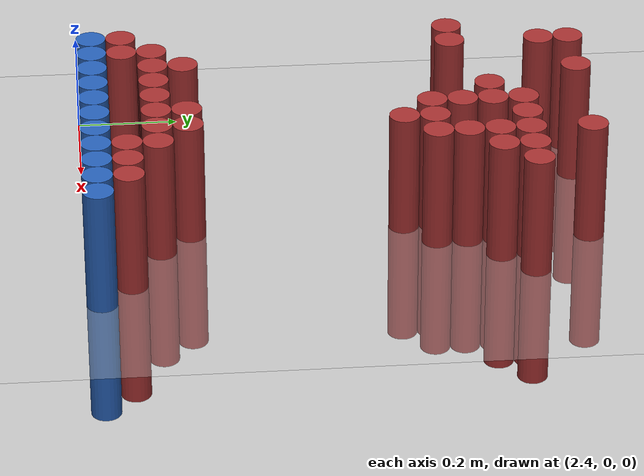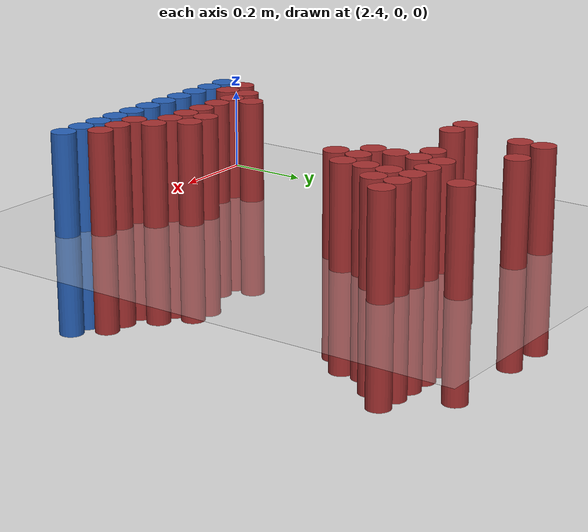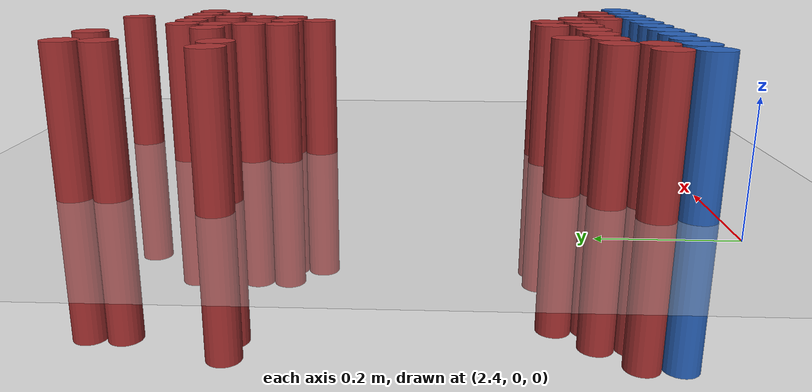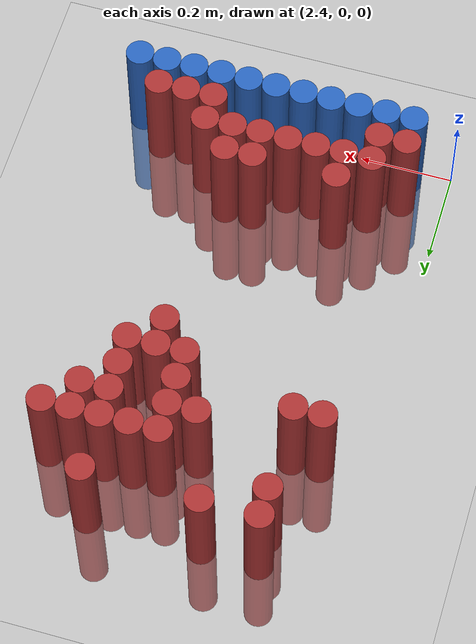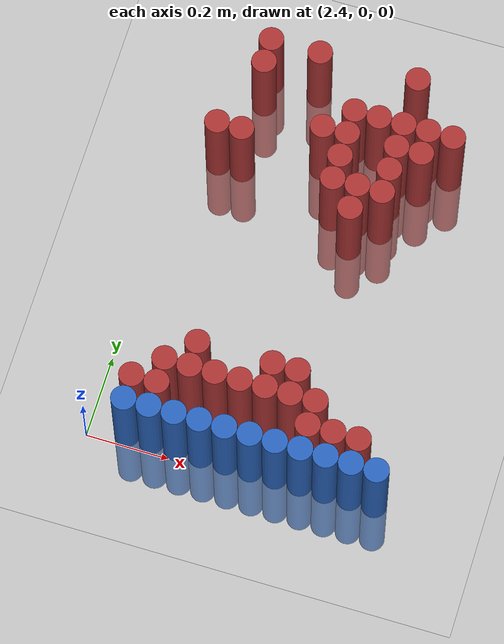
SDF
<sdf version="1.6">
 <world name="default">
  <model name="ground_plane">
   <static>1</static>
   <link name="link">
    <collision name="collision">
     <geometry><plane><normal>0 0 1</normal><size>100 100</size></plane></geometry>
     <surface><friction><ode><mu>100</mu><mu2>50</mu2></ode></friction></surface>
    </collision>
    <visual name="visual">
     <cast_shadows>0</cast_shadows>
     <geometry><plane><normal>0 0 1</normal><size>100 100</size></plane></geometry>
     <material>
      <script><uri>file://media/materials/scripts/gazebo.material</uri><name>Gazebo/Grey</name></script>
     </material>
    </visual>
   </link>
  </model>
  <model name="unit_cylinder_204">
   <static>1</static>
   <pose>2.550000 0.990000 0.000000 0.000000 0.000000 0.000000</pose>
   <link name="link">
    <inertial>
     <mass>1</mass>
     <inertia><ixx>0.145833</ixx><ixy>0</ixy><ixz>0</ixz><iyy>0.145833</iyy><iyz>0</iyz><izz>0.125</izz></inertia>
    </inertial>
    <collision name="collision">
     <geometry><cylinder><radius>0.030000</radius><length>0.5</length></cylinder></geometry>
    </collision>
    <visual name="visual">
     <geometry><cylinder><radius>0.030000</radius><length>0.5</length></cylinder></geometry>
     <material>
      <ambient>0.648000 0.192000 0.192000 1</ambient>
      <diffuse>0.648000 0.192000 0.192000 1</diffuse>
     </material>
     <material>
      <script><name>Gazebo/Grey</name><uri>file://media/materials/scripts/gazebo.material</uri></script>
     </material>
    </visual>
   </link>
  </model>
  <model name="unit_cylinder_205">
   <static>1</static>
   <pose>2.670000 0.990000 0.000000 0.000000 0.000000 0.000000</pose>
   <link name="link">
    <inertial>
     <mass>1</mass>
     <inertia><ixx>0.145833</ixx><ixy>0</ixy><ixz>0</ixz><iyy>0.145833</iyy><iyz>0</iyz><izz>0.125</izz></inertia>
    </inertial>
    <collision name="collision">
     <geometry><cylinder><radius>0.030000</radius><length>0.5</length></cylinder></geometry>
    </collision>
    <visual name="visual">
     <geometry><cylinder><radius>0.030000</radius><length>0.5</length></cylinder></geometry>
     <material>
      <ambient>0.648000 0.192000 0.192000 1</ambient>
      <diffuse>0.648000 0.192000 0.192000 1</diffuse>
     </material>
     <material>
      <script><name>Gazebo/Grey</name><uri>file://media/materials/scripts/gazebo.material</uri></script>
     </material>
    </visual>
   </link>
  </model>
  <model name="unit_cylinder_206">
   <static>1</static>
   <pose>2.910000 0.990000 0.000000 0.000000 0.000000 0.000000</pose>
   <link name="link">
    <inertial>
     <mass>1</mass>
     <inertia><ixx>0.145833</ixx><ixy>0</ixy><ixz>0</ixz><iyy>0.145833</iyy><iyz>0</iyz><izz>0.125</izz></inertia>
    </inertial>
    <collision name="collision">
     <geometry><cylinder><radius>0.030000</radius><length>0.5</length></cylinder></geometry>
    </collision>
    <visual name="visual">
     <geometry><cylinder><radius>0.030000</radius><length>0.5</length></cylinder></geometry>
     <material>
      <ambient>0.648000 0.192000 0.192000 1</ambient>
      <diffuse>0.648000 0.192000 0.192000 1</diffuse>
     </material>
     <material>
      <script><name>Gazebo/Grey</name><uri>file://media/materials/scripts/gazebo.material</uri></script>
     </material>
    </visual>
   </link>
  </model>
  <model name="unit_cylinder_213">
   <static>1</static>
   <pose>2.550000 0.930000 0.000000 0.000000 0.000000 0.000000</pose>
   <link name="link">
    <inertial>
     <mass>1</mass>
     <inertia><ixx>0.145833</ixx><ixy>0</ixy><ixz>0</ixz><iyy>0.145833</iyy><iyz>0</iyz><izz>0.125</izz></inertia>
    </inertial>
    <collision name="collision">
     <geometry><cylinder><radius>0.030000</radius><length>0.5</length></cylinder></geometry>
    </collision>
    <visual name="visual">
     <geometry><cylinder><radius>0.030000</radius><length>0.5</length></cylinder></geometry>
     <material>
      <ambient>0.648000 0.192000 0.192000 1</ambient>
      <diffuse>0.648000 0.192000 0.192000 1</diffuse>
     </material>
     <material>
      <script><name>Gazebo/Grey</name><uri>file://media/materials/scripts/gazebo.material</uri></script>
     </material>
    </visual>
   </link>
  </model>
  <model name="unit_cylinder_221">
   <static>1</static>
   <pose>2.790000 0.870000 0.000000 0.000000 0.000000 0.000000</pose>
   <link name="link">
    <inertial>
     <mass>1</mass>
     <inertia><ixx>0.145833</ixx><ixy>0</ixy><ixz>0</ixz><iyy>0.145833</iyy><iyz>0</iyz><izz>0.125</izz></inertia>
    </inertial>
    <collision name="collision">
     <geometry><cylinder><radius>0.030000</radius><length>0.5</length></cylinder></geometry>
    </collision>
    <visual name="visual">
     <geometry><cylinder><radius>0.030000</radius><length>0.5</length></cylinder></geometry>
     <material>
      <ambient>0.648000 0.192000 0.192000 1</ambient>
      <diffuse>0.648000 0.192000 0.192000 1</diffuse>
     </material>
     <material>
      <script><name>Gazebo/Grey</name><uri>file://media/materials/scripts/gazebo.material</uri></script>
     </material>
    </visual>
   </link>
  </model>
  <model name="unit_cylinder_222">
   <static>1</static>
   <pose>2.850000 0.870000 0.000000 0.000000 0.000000 0.000000</pose>
   <link name="link">
    <inertial>
     <mass>1</mass>
     <inertia><ixx>0.145833</ixx><ixy>0</ixy><ixz>0</ixz><iyy>0.145833</iyy><iyz>0</iyz><izz>0.125</izz></inertia>
    </inertial>
    <collision name="collision">
     <geometry><cylinder><radius>0.030000</radius><length>0.5</length></cylinder></geometry>
    </collision>
    <visual name="visual">
     <geometry><cylinder><radius>0.030000</radius><length>0.5</length></cylinder></geometry>
     <material>
      <ambient>0.648000 0.192000 0.192000 1</ambient>
      <diffuse>0.648000 0.192000 0.192000 1</diffuse>
     </material>
     <material>
      <script><name>Gazebo/Grey</name><uri>file://media/materials/scripts/gazebo.material</uri></script>
     </material>
    </visual>
   </link>
  </model>
  <model name="unit_cylinder_223">
   <static>1</static>
   <pose>2.910000 0.870000 0.000000 0.000000 0.000000 0.000000</pose>
   <link name="link">
    <inertial>
     <mass>1</mass>
     <inertia><ixx>0.145833</ixx><ixy>0</ixy><ixz>0</ixz><iyy>0.145833</iyy><iyz>0</iyz><izz>0.125</izz></inertia>
    </inertial>
    <collision name="collision">
     <geometry><cylinder><radius>0.030000</radius><length>0.5</length></cylinder></geometry>
    </collision>
    <visual name="visual">
     <geometry><cylinder><radius>0.030000</radius><length>0.5</length></cylinder></geometry>
     <material>
      <ambient>0.648000 0.192000 0.192000 1</ambient>
      <diffuse>0.648000 0.192000 0.192000 1</diffuse>
     </material>
     <material>
      <script><name>Gazebo/Grey</name><uri>file://media/materials/scripts/gazebo.material</uri></script>
     </material>
    </visual>
   </link>
  </model>
  <model name="unit_cylinder_224">
   <static>1</static>
   <pose>2.970000 0.870000 0.000000 0.000000 0.000000 0.000000</pose>
   <link name="link">
    <inertial>
     <mass>1</mass>
     <inertia><ixx>0.145833</ixx><ixy>0</ixy><ixz>0</ixz><iyy>0.145833</iyy><iyz>0</iyz><izz>0.125</izz></inertia>
    </inertial>
    <collision name="collision">
     <geometry><cylinder><radius>0.030000</radius><length>0.5</length></cylinder></geometry>
    </collision>
    <visual name="visual">
     <geometry><cylinder><radius>0.030000</radius><length>0.5</length></cylinder></geometry>
     <material>
      <ambient>0.648000 0.192000 0.192000 1</ambient>
      <diffuse>0.648000 0.192000 0.192000 1</diffuse>
     </material>
     <material>
      <script><name>Gazebo/Grey</name><uri>file://media/materials/scripts/gazebo.material</uri></script>
     </material>
    </visual>
   </link>
  </model>
  <model name="unit_cylinder_225">
   <static>1</static>
   <pose>3.030000 0.870000 0.000000 0.000000 0.000000 0.000000</pose>
   <link name="link">
    <inertial>
     <mass>1</mass>
     <inertia><ixx>0.145833</ixx><ixy>0</ixy><ixz>0</ixz><iyy>0.145833</iyy><iyz>0</iyz><izz>0.125</izz></inertia>
    </inertial>
    <collision name="collision">
     <geometry><cylinder><radius>0.030000</radius><length>0.5</length></cylinder></geometry>
    </collision>
    <visual name="visual">
     <geometry><cylinder><radius>0.030000</radius><length>0.5</length></cylinder></geometry>
     <material>
      <ambient>0.648000 0.192000 0.192000 1</ambient>
      <diffuse>0.648000 0.192000 0.192000 1</diffuse>
     </material>
     <material>
      <script><name>Gazebo/Grey</name><uri>file://media/materials/scripts/gazebo.material</uri></script>
     </material>
    </visual>
   </link>
  </model>
  <model name="unit_cylinder_231">
   <static>1</static>
   <pose>2.730000 0.810000 0.000000 0.000000 0.000000 0.000000</pose>
   <link name="link">
    <inertial>
     <mass>1</mass>
     <inertia><ixx>0.145833</ixx><ixy>0</ixy><ixz>0</ixz><iyy>0.145833</iyy><iyz>0</iyz><izz>0.125</izz></inertia>
    </inertial>
    <collision name="collision">
     <geometry><cylinder><radius>0.030000</radius><length>0.5</length></cylinder></geometry>
    </collision>
    <visual name="visual">
     <geometry><cylinder><radius>0.030000</radius><length>0.5</length></cylinder></geometry>
     <material>
      <ambient>0.648000 0.192000 0.192000 1</ambient>
      <diffuse>0.648000 0.192000 0.192000 1</diffuse>
     </material>
     <material>
      <script><name>Gazebo/Grey</name><uri>file://media/materials/scripts/gazebo.material</uri></script>
     </material>
    </visual>
   </link>
  </model>
  <model name="unit_cylinder_232">
   <static>1</static>
   <pose>2.790000 0.810000 0.000000 0.000000 0.000000 0.000000</pose>
   <link name="link">
    <inertial>
     <mass>1</mass>
     <inertia><ixx>0.145833</ixx><ixy>0</ixy><ixz>0</ixz><iyy>0.145833</iyy><iyz>0</iyz><izz>0.125</izz></inertia>
    </inertial>
    <collision name="collision">
     <geometry><cylinder><radius>0.030000</radius><length>0.5</length></cylinder></geometry>
    </collision>
    <visual name="visual">
     <geometry><cylinder><radius>0.030000</radius><length>0.5</length></cylinder></geometry>
     <material>
      <ambient>0.648000 0.192000 0.192000 1</ambient>
      <diffuse>0.648000 0.192000 0.192000 1</diffuse>
     </material>
     <material>
      <script><name>Gazebo/Grey</name><uri>file://media/materials/scripts/gazebo.material</uri></script>
     </material>
    </visual>
   </link>
  </model>
  <model name="unit_cylinder_233">
   <static>1</static>
   <pose>2.910000 0.810000 0.000000 0.000000 0.000000 0.000000</pose>
   <link name="link">
    <inertial>
     <mass>1</mass>
     <inertia><ixx>0.145833</ixx><ixy>0</ixy><ixz>0</ixz><iyy>0.145833</iyy><iyz>0</iyz><izz>0.125</izz></inertia>
    </inertial>
    <collision name="collision">
     <geometry><cylinder><radius>0.030000</radius><length>0.5</length></cylinder></geometry>
    </collision>
    <visual name="visual">
     <geometry><cylinder><radius>0.030000</radius><length>0.5</length></cylinder></geometry>
     <material>
      <ambient>0.648000 0.192000 0.192000 1</ambient>
      <diffuse>0.648000 0.192000 0.192000 1</diffuse>
     </material>
     <material>
      <script><name>Gazebo/Grey</name><uri>file://media/materials/scripts/gazebo.material</uri></script>
     </material>
    </visual>
   </link>
  </model>
  <model name="unit_cylinder_234">
   <static>1</static>
   <pose>2.970000 0.810000 0.000000 0.000000 0.000000 0.000000</pose>
   <link name="link">
    <inertial>
     <mass>1</mass>
     <inertia><ixx>0.145833</ixx><ixy>0</ixy><ixz>0</ixz><iyy>0.145833</iyy><iyz>0</iyz><izz>0.125</izz></inertia>
    </inertial>
    <collision name="collision">
     <geometry><cylinder><radius>0.030000</radius><length>0.5</length></cylinder></geometry>
    </collision>
    <visual name="visual">
     <geometry><cylinder><radius>0.030000</radius><length>0.5</length></cylinder></geometry>
     <material>
      <ambient>0.648000 0.192000 0.192000 1</ambient>
      <diffuse>0.648000 0.192000 0.192000 1</diffuse>
     </material>
     <material>
      <script><name>Gazebo/Grey</name><uri>file://media/materials/scripts/gazebo.material</uri></script>
     </material>
    </visual>
   </link>
  </model>
  <model name="unit_cylinder_239">
   <static>1</static>
   <pose>2.490000 0.750000 0.000000 0.000000 0.000000 0.000000</pose>
   <link name="link">
    <inertial>
     <mass>1</mass>
     <inertia><ixx>0.145833</ixx><ixy>0</ixy><ixz>0</ixz><iyy>0.145833</iyy><iyz>0</iyz><izz>0.125</izz></inertia>
    </inertial>
    <collision name="collision">
     <geometry><cylinder><radius>0.030000</radius><length>0.5</length></cylinder></geometry>
    </collision>
    <visual name="visual">
     <geometry><cylinder><radius>0.030000</radius><length>0.5</length></cylinder></geometry>
     <material>
      <ambient>0.648000 0.192000 0.192000 1</ambient>
      <diffuse>0.648000 0.192000 0.192000 1</diffuse>
     </material>
     <material>
      <script><name>Gazebo/Grey</name><uri>file://media/materials/scripts/gazebo.material</uri></script>
     </material>
    </visual>
   </link>
  </model>
  <model name="unit_cylinder_240">
   <static>1</static>
   <pose>2.550000 0.750000 0.000000 0.000000 0.000000 0.000000</pose>
   <link name="link">
    <inertial>
     <mass>1</mass>
     <inertia><ixx>0.145833</ixx><ixy>0</ixy><ixz>0</ixz><iyy>0.145833</iyy><iyz>0</iyz><izz>0.125</izz></inertia>
    </inertial>
    <collision name="collision">
     <geometry><cylinder><radius>0.030000</radius><length>0.5</length></cylinder></geometry>
    </collision>
    <visual name="visual">
     <geometry><cylinder><radius>0.030000</radius><length>0.5</length></cylinder></geometry>
     <material>
      <ambient>0.648000 0.192000 0.192000 1</ambient>
      <diffuse>0.648000 0.192000 0.192000 1</diffuse>
     </material>
     <material>
      <script><name>Gazebo/Grey</name><uri>file://media/materials/scripts/gazebo.material</uri></script>
     </material>
    </visual>
   </link>
  </model>
  <model name="unit_cylinder_241">
   <static>1</static>
   <pose>2.790000 0.750000 0.000000 0.000000 0.000000 0.000000</pose>
   <link name="link">
    <inertial>
     <mass>1</mass>
     <inertia><ixx>0.145833</ixx><ixy>0</ixy><ixz>0</ixz><iyy>0.145833</iyy><iyz>0</iyz><izz>0.125</izz></inertia>
    </inertial>
    <collision name="collision">
     <geometry><cylinder><radius>0.030000</radius><length>0.5</length></cylinder></geometry>
    </collision>
    <visual name="visual">
     <geometry><cylinder><radius>0.030000</radius><length>0.5</length></cylinder></geometry>
     <material>
      <ambient>0.648000 0.192000 0.192000 1</ambient>
      <diffuse>0.648000 0.192000 0.192000 1</diffuse>
     </material>
     <material>
      <script><name>Gazebo/Grey</name><uri>file://media/materials/scripts/gazebo.material</uri></script>
     </material>
    </visual>
   </link>
  </model>
  <model name="unit_cylinder_242">
   <static>1</static>
   <pose>2.910000 0.750000 0.000000 0.000000 0.000000 0.000000</pose>
   <link name="link">
    <inertial>
     <mass>1</mass>
     <inertia><ixx>0.145833</ixx><ixy>0</ixy><ixz>0</ixz><iyy>0.145833</iyy><iyz>0</iyz><izz>0.125</izz></inertia>
    </inertial>
    <collision name="collision">
     <geometry><cylinder><radius>0.030000</radius><length>0.5</length></cylinder></geometry>
    </collision>
    <visual name="visual">
     <geometry><cylinder><radius>0.030000</radius><length>0.5</length></cylinder></geometry>
     <material>
      <ambient>0.648000 0.192000 0.192000 1</ambient>
      <diffuse>0.648000 0.192000 0.192000 1</diffuse>
     </material>
     <material>
      <script><name>Gazebo/Grey</name><uri>file://media/materials/scripts/gazebo.material</uri></script>
     </material>
    </visual>
   </link>
  </model>
  <model name="unit_cylinder_246">
   <static>1</static>
   <pose>2.790000 0.690000 0.000000 0.000000 0.000000 0.000000</pose>
   <link name="link">
    <inertial>
     <mass>1</mass>
     <inertia><ixx>0.145833</ixx><ixy>0</ixy><ixz>0</ixz><iyy>0.145833</iyy><iyz>0</iyz><izz>0.125</izz></inertia>
    </inertial>
    <collision name="collision">
     <geometry><cylinder><radius>0.030000</radius><length>0.5</length></cylinder></geometry>
    </collision>
    <visual name="visual">
     <geometry><cylinder><radius>0.030000</radius><length>0.5</length></cylinder></geometry>
     <material>
      <ambient>0.648000 0.192000 0.192000 1</ambient>
      <diffuse>0.648000 0.192000 0.192000 1</diffuse>
     </material>
     <material>
      <script><name>Gazebo/Grey</name><uri>file://media/materials/scripts/gazebo.material</uri></script>
     </material>
    </visual>
   </link>
  </model>
  <model name="unit_cylinder_247">
   <static>1</static>
   <pose>2.850000 0.690000 0.000000 0.000000 0.000000 0.000000</pose>
   <link name="link">
    <inertial>
     <mass>1</mass>
     <inertia><ixx>0.145833</ixx><ixy>0</ixy><ixz>0</ixz><iyy>0.145833</iyy><iyz>0</iyz><izz>0.125</izz></inertia>
    </inertial>
    <collision name="collision">
     <geometry><cylinder><radius>0.030000</radius><length>0.5</length></cylinder></geometry>
    </collision>
    <visual name="visual">
     <geometry><cylinder><radius>0.030000</radius><length>0.5</length></cylinder></geometry>
     <material>
      <ambient>0.648000 0.192000 0.192000 1</ambient>
      <diffuse>0.648000 0.192000 0.192000 1</diffuse>
     </material>
     <material>
      <script><name>Gazebo/Grey</name><uri>file://media/materials/scripts/gazebo.material</uri></script>
     </material>
    </visual>
   </link>
  </model>
  <model name="unit_cylinder_248">
   <static>1</static>
   <pose>2.910000 0.690000 0.000000 0.000000 0.000000 0.000000</pose>
   <link name="link">
    <inertial>
     <mass>1</mass>
     <inertia><ixx>0.145833</ixx><ixy>0</ixy><ixz>0</ixz><iyy>0.145833</iyy><iyz>0</iyz><izz>0.125</izz></inertia>
    </inertial>
    <collision name="collision">
     <geometry><cylinder><radius>0.030000</radius><length>0.5</length></cylinder></geometry>
    </collision>
    <visual name="visual">
     <geometry><cylinder><radius>0.030000</radius><length>0.5</length></cylinder></geometry>
     <material>
      <ambient>0.648000 0.192000 0.192000 1</ambient>
      <diffuse>0.648000 0.192000 0.192000 1</diffuse>
     </material>
     <material>
      <script><name>Gazebo/Grey</name><uri>file://media/materials/scripts/gazebo.material</uri></script>
     </material>
    </visual>
   </link>
  </model>
  <model name="unit_cylinder_254">
   <static>1</static>
   <pose>2.850000 0.630000 0.000000 0.000000 0.000000 0.000000</pose>
   <link name="link">
    <inertial>
     <mass>1</mass>
     <inertia><ixx>0.145833</ixx><ixy>0</ixy><ixz>0</ixz><iyy>0.145833</iyy><iyz>0</iyz><izz>0.125</izz></inertia>
    </inertial>
    <collision name="collision">
     <geometry><cylinder><radius>0.030000</radius><length>0.5</length></cylinder></geometry>
    </collision>
    <visual name="visual">
     <geometry><cylinder><radius>0.030000</radius><length>0.5</length></cylinder></geometry>
     <material>
      <ambient>0.648000 0.192000 0.192000 1</ambient>
      <diffuse>0.648000 0.192000 0.192000 1</diffuse>
     </material>
     <material>
      <script><name>Gazebo/Grey</name><uri>file://media/materials/scripts/gazebo.material</uri></script>
     </material>
    </visual>
   </link>
  </model>
  <model name="unit_cylinder_272">
   <static>1</static>
   <pose>2.610000 0.210000 0.000000 0.000000 0.000000 0.000000</pose>
   <link name="link">
    <inertial>
     <mass>1</mass>
     <inertia><ixx>0.145833</ixx><ixy>0</ixy><ixz>0</ixz><iyy>0.145833</iyy><iyz>0</iyz><izz>0.125</izz></inertia>
    </inertial>
    <collision name="collision">
     <geometry><cylinder><radius>0.030000</radius><length>0.5</length></cylinder></geometry>
    </collision>
    <visual name="visual">
     <geometry><cylinder><radius>0.030000</radius><length>0.5</length></cylinder></geometry>
     <material>
      <ambient>0.648000 0.192000 0.192000 1</ambient>
      <diffuse>0.648000 0.192000 0.192000 1</diffuse>
     </material>
     <material>
      <script><name>Gazebo/Grey</name><uri>file://media/materials/scripts/gazebo.material</uri></script>
     </material>
    </visual>
   </link>
  </model>
  <model name="unit_cylinder_273">
   <static>1</static>
   <pose>2.790000 0.210000 0.000000 0.000000 0.000000 0.000000</pose>
   <link name="link">
    <inertial>
     <mass>1</mass>
     <inertia><ixx>0.145833</ixx><ixy>0</ixy><ixz>0</ixz><iyy>0.145833</iyy><iyz>0</iyz><izz>0.125</izz></inertia>
    </inertial>
    <collision name="collision">
     <geometry><cylinder><radius>0.030000</radius><length>0.5</length></cylinder></geometry>
    </collision>
    <visual name="visual">
     <geometry><cylinder><radius>0.030000</radius><length>0.5</length></cylinder></geometry>
     <material>
      <ambient>0.648000 0.192000 0.192000 1</ambient>
      <diffuse>0.648000 0.192000 0.192000 1</diffuse>
     </material>
     <material>
      <script><name>Gazebo/Grey</name><uri>file://media/materials/scripts/gazebo.material</uri></script>
     </material>
    </visual>
   </link>
  </model>
  <model name="unit_cylinder_274">
   <static>1</static>
   <pose>2.850000 0.210000 0.000000 0.000000 0.000000 0.000000</pose>
   <link name="link">
    <inertial>
     <mass>1</mass>
     <inertia><ixx>0.145833</ixx><ixy>0</ixy><ixz>0</ixz><iyy>0.145833</iyy><iyz>0</iyz><izz>0.125</izz></inertia>
    </inertial>
    <collision name="collision">
     <geometry><cylinder><radius>0.030000</radius><length>0.5</length></cylinder></geometry>
    </collision>
    <visual name="visual">
     <geometry><cylinder><radius>0.030000</radius><length>0.5</length></cylinder></geometry>
     <material>
      <ambient>0.648000 0.192000 0.192000 1</ambient>
      <diffuse>0.648000 0.192000 0.192000 1</diffuse>
     </material>
     <material>
      <script><name>Gazebo/Grey</name><uri>file://media/materials/scripts/gazebo.material</uri></script>
     </material>
    </visual>
   </link>
  </model>
  <model name="unit_cylinder_276">
   <static>1</static>
   <pose>2.550000 0.150000 0.000000 0.000000 0.000000 0.000000</pose>
   <link name="link">
    <inertial>
     <mass>1</mass>
     <inertia><ixx>0.145833</ixx><ixy>0</ixy><ixz>0</ixz><iyy>0.145833</iyy><iyz>0</iyz><izz>0.125</izz></inertia>
    </inertial>
    <collision name="collision">
     <geometry><cylinder><radius>0.030000</radius><length>0.5</length></cylinder></geometry>
    </collision>
    <visual name="visual">
     <geometry><cylinder><radius>0.030000</radius><length>0.5</length></cylinder></geometry>
     <material>
      <ambient>0.648000 0.192000 0.192000 1</ambient>
      <diffuse>0.648000 0.192000 0.192000 1</diffuse>
     </material>
     <material>
      <script><name>Gazebo/Grey</name><uri>file://media/materials/scripts/gazebo.material</uri></script>
     </material>
    </visual>
   </link>
  </model>
  <model name="unit_cylinder_277">
   <static>1</static>
   <pose>2.610000 0.150000 0.000000 0.000000 0.000000 0.000000</pose>
   <link name="link">
    <inertial>
     <mass>1</mass>
     <inertia><ixx>0.145833</ixx><ixy>0</ixy><ixz>0</ixz><iyy>0.145833</iyy><iyz>0</iyz><izz>0.125</izz></inertia>
    </inertial>
    <collision name="collision">
     <geometry><cylinder><radius>0.030000</radius><length>0.5</length></cylinder></geometry>
    </collision>
    <visual name="visual">
     <geometry><cylinder><radius>0.030000</radius><length>0.5</length></cylinder></geometry>
     <material>
      <ambient>0.648000 0.192000 0.192000 1</ambient>
      <diffuse>0.648000 0.192000 0.192000 1</diffuse>
     </material>
     <material>
      <script><name>Gazebo/Grey</name><uri>file://media/materials/scripts/gazebo.material</uri></script>
     </material>
    </visual>
   </link>
  </model>
  <model name="unit_cylinder_278">
   <static>1</static>
   <pose>2.670000 0.150000 0.000000 0.000000 0.000000 0.000000</pose>
   <link name="link">
    <inertial>
     <mass>1</mass>
     <inertia><ixx>0.145833</ixx><ixy>0</ixy><ixz>0</ixz><iyy>0.145833</iyy><iyz>0</iyz><izz>0.125</izz></inertia>
    </inertial>
    <collision name="collision">
     <geometry><cylinder><radius>0.030000</radius><length>0.5</length></cylinder></geometry>
    </collision>
    <visual name="visual">
     <geometry><cylinder><radius>0.030000</radius><length>0.5</length></cylinder></geometry>
     <material>
      <ambient>0.648000 0.192000 0.192000 1</ambient>
      <diffuse>0.648000 0.192000 0.192000 1</diffuse>
     </material>
     <material>
      <script><name>Gazebo/Grey</name><uri>file://media/materials/scripts/gazebo.material</uri></script>
     </material>
    </visual>
   </link>
  </model>
  <model name="unit_cylinder_279">
   <static>1</static>
   <pose>2.730000 0.150000 0.000000 0.000000 0.000000 0.000000</pose>
   <link name="link">
    <inertial>
     <mass>1</mass>
     <inertia><ixx>0.145833</ixx><ixy>0</ixy><ixz>0</ixz><iyy>0.145833</iyy><iyz>0</iyz><izz>0.125</izz></inertia>
    </inertial>
    <collision name="collision">
     <geometry><cylinder><radius>0.030000</radius><length>0.5</length></cylinder></geometry>
    </collision>
    <visual name="visual">
     <geometry><cylinder><radius>0.030000</radius><length>0.5</length></cylinder></geometry>
     <material>
      <ambient>0.648000 0.192000 0.192000 1</ambient>
      <diffuse>0.648000 0.192000 0.192000 1</diffuse>
     </material>
     <material>
      <script><name>Gazebo/Grey</name><uri>file://media/materials/scripts/gazebo.material</uri></script>
     </material>
    </visual>
   </link>
  </model>
  <model name="unit_cylinder_280">
   <static>1</static>
   <pose>2.790000 0.150000 0.000000 0.000000 0.000000 0.000000</pose>
   <link name="link">
    <inertial>
     <mass>1</mass>
     <inertia><ixx>0.145833</ixx><ixy>0</ixy><ixz>0</ixz><iyy>0.145833</iyy><iyz>0</iyz><izz>0.125</izz></inertia>
    </inertial>
    <collision name="collision">
     <geometry><cylinder><radius>0.030000</radius><length>0.5</length></cylinder></geometry>
    </collision>
    <visual name="visual">
     <geometry><cylinder><radius>0.030000</radius><length>0.5</length></cylinder></geometry>
     <material>
      <ambient>0.648000 0.192000 0.192000 1</ambient>
      <diffuse>0.648000 0.192000 0.192000 1</diffuse>
     </material>
     <material>
      <script><name>Gazebo/Grey</name><uri>file://media/materials/scripts/gazebo.material</uri></script>
     </material>
    </visual>
   </link>
  </model>
  <model name="unit_cylinder_281">
   <static>1</static>
   <pose>2.850000 0.150000 0.000000 0.000000 0.000000 0.000000</pose>
   <link name="link">
    <inertial>
     <mass>1</mass>
     <inertia><ixx>0.145833</ixx><ixy>0</ixy><ixz>0</ixz><iyy>0.145833</iyy><iyz>0</iyz><izz>0.125</izz></inertia>
    </inertial>
    <collision name="collision">
     <geometry><cylinder><radius>0.030000</radius><length>0.5</length></cylinder></geometry>
    </collision>
    <visual name="visual">
     <geometry><cylinder><radius>0.030000</radius><length>0.5</length></cylinder></geometry>
     <material>
      <ambient>0.648000 0.192000 0.192000 1</ambient>
      <diffuse>0.648000 0.192000 0.192000 1</diffuse>
     </material>
     <material>
      <script><name>Gazebo/Grey</name><uri>file://media/materials/scripts/gazebo.material</uri></script>
     </material>
    </visual>
   </link>
  </model>
  <model name="unit_cylinder_282">
   <static>1</static>
   <pose>2.910000 0.150000 0.000000 0.000000 0.000000 0.000000</pose>
   <link name="link">
    <inertial>
     <mass>1</mass>
     <inertia><ixx>0.145833</ixx><ixy>0</ixy><ixz>0</ixz><iyy>0.145833</iyy><iyz>0</iyz><izz>0.125</izz></inertia>
    </inertial>
    <collision name="collision">
     <geometry><cylinder><radius>0.030000</radius><length>0.5</length></cylinder></geometry>
    </collision>
    <visual name="visual">
     <geometry><cylinder><radius>0.030000</radius><length>0.5</length></cylinder></geometry>
     <material>
      <ambient>0.648000 0.192000 0.192000 1</ambient>
      <diffuse>0.648000 0.192000 0.192000 1</diffuse>
     </material>
     <material>
      <script><name>Gazebo/Grey</name><uri>file://media/materials/scripts/gazebo.material</uri></script>
     </material>
    </visual>
   </link>
  </model>
  <model name="unit_cylinder_286">
   <static>1</static>
   <pose>2.490000 0.090000 0.000000 0.000000 0.000000 0.000000</pose>
   <link name="link">
    <inertial>
     <mass>1</mass>
     <inertia><ixx>0.145833</ixx><ixy>0</ixy><ixz>0</ixz><iyy>0.145833</iyy><iyz>0</iyz><izz>0.125</izz></inertia>
    </inertial>
    <collision name="collision">
     <geometry><cylinder><radius>0.030000</radius><length>0.5</length></cylinder></geometry>
    </collision>
    <visual name="visual">
     <geometry><cylinder><radius>0.030000</radius><length>0.5</length></cylinder></geometry>
     <material>
      <ambient>0.648000 0.192000 0.192000 1</ambient>
      <diffuse>0.648000 0.192000 0.192000 1</diffuse>
     </material>
     <material>
      <script><name>Gazebo/Grey</name><uri>file://media/materials/scripts/gazebo.material</uri></script>
     </material>
    </visual>
   </link>
  </model>
  <model name="unit_cylinder_287">
   <static>1</static>
   <pose>2.550000 0.090000 0.000000 0.000000 0.000000 0.000000</pose>
   <link name="link">
    <inertial>
     <mass>1</mass>
     <inertia><ixx>0.145833</ixx><ixy>0</ixy><ixz>0</ixz><iyy>0.145833</iyy><iyz>0</iyz><izz>0.125</izz></inertia>
    </inertial>
    <collision name="collision">
     <geometry><cylinder><radius>0.030000</radius><length>0.5</length></cylinder></geometry>
    </collision>
    <visual name="visual">
     <geometry><cylinder><radius>0.030000</radius><length>0.5</length></cylinder></geometry>
     <material>
      <ambient>0.648000 0.192000 0.192000 1</ambient>
      <diffuse>0.648000 0.192000 0.192000 1</diffuse>
     </material>
     <material>
      <script><name>Gazebo/Grey</name><uri>file://media/materials/scripts/gazebo.material</uri></script>
     </material>
    </visual>
   </link>
  </model>
  <model name="unit_cylinder_288">
   <static>1</static>
   <pose>2.910000 0.090000 0.000000 0.000000 0.000000 0.000000</pose>
   <link name="link">
    <inertial>
     <mass>1</mass>
     <inertia><ixx>0.145833</ixx><ixy>0</ixy><ixz>0</ixz><iyy>0.145833</iyy><iyz>0</iyz><izz>0.125</izz></inertia>
    </inertial>
    <collision name="collision">
     <geometry><cylinder><radius>0.030000</radius><length>0.5</length></cylinder></geometry>
    </collision>
    <visual name="visual">
     <geometry><cylinder><radius>0.030000</radius><length>0.5</length></cylinder></geometry>
     <material>
      <ambient>0.648000 0.192000 0.192000 1</ambient>
      <diffuse>0.648000 0.192000 0.192000 1</diffuse>
     </material>
     <material>
      <script><name>Gazebo/Grey</name><uri>file://media/materials/scripts/gazebo.material</uri></script>
     </material>
    </visual>
   </link>
  </model>
  <model name="unit_cylinder_289">
   <static>1</static>
   <pose>2.970000 0.090000 0.000000 0.000000 0.000000 0.000000</pose>
   <link name="link">
    <inertial>
     <mass>1</mass>
     <inertia><ixx>0.145833</ixx><ixy>0</ixy><ixz>0</ixz><iyy>0.145833</iyy><iyz>0</iyz><izz>0.125</izz></inertia>
    </inertial>
    <collision name="collision">
     <geometry><cylinder><radius>0.030000</radius><length>0.5</length></cylinder></geometry>
    </collision>
    <visual name="visual">
     <geometry><cylinder><radius>0.030000</radius><length>0.5</length></cylinder></geometry>
     <material>
      <ambient>0.648000 0.192000 0.192000 1</ambient>
      <diffuse>0.648000 0.192000 0.192000 1</diffuse>
     </material>
     <material>
      <script><name>Gazebo/Grey</name><uri>file://media/materials/scripts/gazebo.material</uri></script>
     </material>
    </visual>
   </link>
  </model>
  <model name="unit_cylinder_290">
   <static>1</static>
   <pose>3.030000 0.090000 0.000000 0.000000 0.000000 0.000000</pose>
   <link name="link">
    <inertial>
     <mass>1</mass>
     <inertia><ixx>0.145833</ixx><ixy>0</ixy><ixz>0</ixz><iyy>0.145833</iyy><iyz>0</iyz><izz>0.125</izz></inertia>
    </inertial>
    <collision name="collision">
     <geometry><cylinder><radius>0.030000</radius><length>0.5</length></cylinder></geometry>
    </collision>
    <visual name="visual">
     <geometry><cylinder><radius>0.030000</radius><length>0.5</length></cylinder></geometry>
     <material>
      <ambient>0.648000 0.192000 0.192000 1</ambient>
      <diffuse>0.648000 0.192000 0.192000 1</diffuse>
     </material>
     <material>
      <script><name>Gazebo/Grey</name><uri>file://media/materials/scripts/gazebo.material</uri></script>
     </material>
    </visual>
   </link>
  </model>
  <model name="unit_cylinder_307">
   <static>1</static>
   <pose>2.490000 0.030000 0.000000 0.000000 0.000000 0.000000</pose>
   <link name="link">
    <inertial>
     <mass>1</mass>
     <inertia><ixx>0.145833</ixx><ixy>0</ixy><ixz>0</ixz><iyy>0.145833</iyy><iyz>0</iyz><izz>0.125</izz></inertia>
    </inertial>
    <collision name="collision">
     <geometry><cylinder><radius>0.030000</radius><length>0.5</length></cylinder></geometry>
    </collision>
    <visual name="visual">
     <geometry><cylinder><radius>0.030000</radius><length>0.5</length></cylinder></geometry>
     <material>
      <ambient>0.152000 0.379000 0.720000 1</ambient>
      <diffuse>0.152000 0.379000 0.720000 1</diffuse>
     </material>
     <material>
      <script><name>Gazebo/Grey</name><uri>file://media/materials/scripts/gazebo.material</uri></script>
     </material>
    </visual>
   </link>
  </model>
  <model name="unit_cylinder_308">
   <static>1</static>
   <pose>2.550000 0.030000 0.000000 0.000000 0.000000 0.000000</pose>
   <link name="link">
    <inertial>
     <mass>1</mass>
     <inertia><ixx>0.145833</ixx><ixy>0</ixy><ixz>0</ixz><iyy>0.145833</iyy><iyz>0</iyz><izz>0.125</izz></inertia>
    </inertial>
    <collision name="collision">
     <geometry><cylinder><radius>0.030000</radius><length>0.5</length></cylinder></geometry>
    </collision>
    <visual name="visual">
     <geometry><cylinder><radius>0.030000</radius><length>0.5</length></cylinder></geometry>
     <material>
      <ambient>0.152000 0.379000 0.720000 1</ambient>
      <diffuse>0.152000 0.379000 0.720000 1</diffuse>
     </material>
     <material>
      <script><name>Gazebo/Grey</name><uri>file://media/materials/scripts/gazebo.material</uri></script>
     </material>
    </visual>
   </link>
  </model>
  <model name="unit_cylinder_309">
   <static>1</static>
   <pose>2.610000 0.030000 0.000000 0.000000 0.000000 0.000000</pose>
   <link name="link">
    <inertial>
     <mass>1</mass>
     <inertia><ixx>0.145833</ixx><ixy>0</ixy><ixz>0</ixz><iyy>0.145833</iyy><iyz>0</iyz><izz>0.125</izz></inertia>
    </inertial>
    <collision name="collision">
     <geometry><cylinder><radius>0.030000</radius><length>0.5</length></cylinder></geometry>
    </collision>
    <visual name="visual">
     <geometry><cylinder><radius>0.030000</radius><length>0.5</length></cylinder></geometry>
     <material>
      <ambient>0.152000 0.379000 0.720000 1</ambient>
      <diffuse>0.152000 0.379000 0.720000 1</diffuse>
     </material>
     <material>
      <script><name>Gazebo/Grey</name><uri>file://media/materials/scripts/gazebo.material</uri></script>
     </material>
    </visual>
   </link>
  </model>
  <model name="unit_cylinder_310">
   <static>1</static>
   <pose>2.670000 0.030000 0.000000 0.000000 0.000000 0.000000</pose>
   <link name="link">
    <inertial>
     <mass>1</mass>
     <inertia><ixx>0.145833</ixx><ixy>0</ixy><ixz>0</ixz><iyy>0.145833</iyy><iyz>0</iyz><izz>0.125</izz></inertia>
    </inertial>
    <collision name="collision">
     <geometry><cylinder><radius>0.030000</radius><length>0.5</length></cylinder></geometry>
    </collision>
    <visual name="visual">
     <geometry><cylinder><radius>0.030000</radius><length>0.5</length></cylinder></geometry>
     <material>
      <ambient>0.152000 0.379000 0.720000 1</ambient>
      <diffuse>0.152000 0.379000 0.720000 1</diffuse>
     </material>
     <material>
      <script><name>Gazebo/Grey</name><uri>file://media/materials/scripts/gazebo.material</uri></script>
     </material>
    </visual>
   </link>
  </model>
  <model name="unit_cylinder_311">
   <static>1</static>
   <pose>2.730000 0.030000 0.000000 0.000000 0.000000 0.000000</pose>
   <link name="link">
    <inertial>
     <mass>1</mass>
     <inertia><ixx>0.145833</ixx><ixy>0</ixy><ixz>0</ixz><iyy>0.145833</iyy><iyz>0</iyz><izz>0.125</izz></inertia>
    </inertial>
    <collision name="collision">
     <geometry><cylinder><radius>0.030000</radius><length>0.5</length></cylinder></geometry>
    </collision>
    <visual name="visual">
     <geometry><cylinder><radius>0.030000</radius><length>0.5</length></cylinder></geometry>
     <material>
      <ambient>0.152000 0.379000 0.720000 1</ambient>
      <diffuse>0.152000 0.379000 0.720000 1</diffuse>
     </material>
     <material>
      <script><name>Gazebo/Grey</name><uri>file://media/materials/scripts/gazebo.material</uri></script>
     </material>
    </visual>
   </link>
  </model>
  <model name="unit_cylinder_312">
   <static>1</static>
   <pose>2.790000 0.030000 0.000000 0.000000 0.000000 0.000000</pose>
   <link name="link">
    <inertial>
     <mass>1</mass>
     <inertia><ixx>0.145833</ixx><ixy>0</ixy><ixz>0</ixz><iyy>0.145833</iyy><iyz>0</iyz><izz>0.125</izz></inertia>
    </inertial>
    <collision name="collision">
     <geometry><cylinder><radius>0.030000</radius><length>0.5</length></cylinder></geometry>
    </collision>
    <visual name="visual">
     <geometry><cylinder><radius>0.030000</radius><length>0.5</length></cylinder></geometry>
     <material>
      <ambient>0.152000 0.379000 0.720000 1</ambient>
      <diffuse>0.152000 0.379000 0.720000 1</diffuse>
     </material>
     <material>
      <script><name>Gazebo/Grey</name><uri>file://media/materials/scripts/gazebo.material</uri></script>
     </material>
    </visual>
   </link>
  </model>
  <model name="unit_cylinder_313">
   <static>1</static>
   <pose>2.850000 0.030000 0.000000 0.000000 0.000000 0.000000</pose>
   <link name="link">
    <inertial>
     <mass>1</mass>
     <inertia><ixx>0.145833</ixx><ixy>0</ixy><ixz>0</ixz><iyy>0.145833</iyy><iyz>0</iyz><izz>0.125</izz></inertia>
    </inertial>
    <collision name="collision">
     <geometry><cylinder><radius>0.030000</radius><length>0.5</length></cylinder></geometry>
    </collision>
    <visual name="visual">
     <geometry><cylinder><radius>0.030000</radius><length>0.5</length></cylinder></geometry>
     <material>
      <ambient>0.152000 0.379000 0.720000 1</ambient>
      <diffuse>0.152000 0.379000 0.720000 1</diffuse>
     </material>
     <material>
      <script><name>Gazebo/Grey</name><uri>file://media/materials/scripts/gazebo.material</uri></script>
     </material>
    </visual>
   </link>
  </model>
  <model name="unit_cylinder_314">
   <static>1</static>
   <pose>2.910000 0.030000 0.000000 0.000000 0.000000 0.000000</pose>
   <link name="link">
    <inertial>
     <mass>1</mass>
     <inertia><ixx>0.145833</ixx><ixy>0</ixy><ixz>0</ixz><iyy>0.145833</iyy><iyz>0</iyz><izz>0.125</izz></inertia>
    </inertial>
    <collision name="collision">
     <geometry><cylinder><radius>0.030000</radius><length>0.5</length></cylinder></geometry>
    </collision>
    <visual name="visual">
     <geometry><cylinder><radius>0.030000</radius><length>0.5</length></cylinder></geometry>
     <material>
      <ambient>0.152000 0.379000 0.720000 1</ambient>
      <diffuse>0.152000 0.379000 0.720000 1</diffuse>
     </material>
     <material>
      <script><name>Gazebo/Grey</name><uri>file://media/materials/scripts/gazebo.material</uri></script>
     </material>
    </visual>
   </link>
  </model>
  <model name="unit_cylinder_315">
   <static>1</static>
   <pose>2.970000 0.030000 0.000000 0.000000 0.000000 0.000000</pose>
   <link name="link">
    <inertial>
     <mass>1</mass>
     <inertia><ixx>0.145833</ixx><ixy>0</ixy><ixz>0</ixz><iyy>0.145833</iyy><iyz>0</iyz><izz>0.125</izz></inertia>
    </inertial>
    <collision name="collision">
     <geometry><cylinder><radius>0.030000</radius><length>0.5</length></cylinder></geometry>
    </collision>
    <visual name="visual">
     <geometry><cylinder><radius>0.030000</radius><length>0.5</length></cylinder></geometry>
     <material>
      <ambient>0.152000 0.379000 0.720000 1</ambient>
      <diffuse>0.152000 0.379000 0.720000 1</diffuse>
     </material>
     <material>
      <script><name>Gazebo/Grey</name><uri>file://media/materials/scripts/gazebo.material</uri></script>
     </material>
    </visual>
   </link>
  </model>
  <model name="unit_cylinder_316">
   <static>1</static>
   <pose>3.030000 0.030000 0.000000 0.000000 0.000000 0.000000</pose>
   <link name="link">
    <inertial>
     <mass>1</mass>
     <inertia><ixx>0.145833</ixx><ixy>0</ixy><ixz>0</ixz><iyy>0.145833</iyy><iyz>0</iyz><izz>0.125</izz></inertia>
    </inertial>
    <collision name="collision">
     <geometry><cylinder><radius>0.030000</radius><length>0.5</length></cylinder></geometry>
    </collision>
    <visual name="visual">
     <geometry><cylinder><radius>0.030000</radius><length>0.5</length></cylinder></geometry>
     <material>
      <ambient>0.152000 0.379000 0.720000 1</ambient>
      <diffuse>0.152000 0.379000 0.720000 1</diffuse>
     </material>
     <material>
      <script><name>Gazebo/Grey</name><uri>file://media/materials/scripts/gazebo.material</uri></script>
     </material>
    </visual>
   </link>
  </model>
  <model name="unit_cylinder_317">
   <static>1</static>
   <pose>3.090000 0.030000 0.000000 0.000000 0.000000 0.000000</pose>
   <link name="link">
    <inertial>
     <mass>1</mass>
     <inertia><ixx>0.145833</ixx><ixy>0</ixy><ixz>0</ixz><iyy>0.145833</iyy><iyz>0</iyz><izz>0.125</izz></inertia>
    </inertial>
    <collision name="collision">
     <geometry><cylinder><radius>0.030000</radius><length>0.5</length></cylinder></geometry>
    </collision>
    <visual name="visual">
     <geometry><cylinder><radius>0.030000</radius><length>0.5</length></cylinder></geometry>
     <material>
      <ambient>0.152000 0.379000 0.720000 1</ambient>
      <diffuse>0.152000 0.379000 0.720000 1</diffuse>
     </material>
     <material>
      <script><name>Gazebo/Grey</name><uri>file://media/materials/scripts/gazebo.material</uri></script>
     </material>
    </visual>
   </link>
  </model>
 </world>
</sdf>
